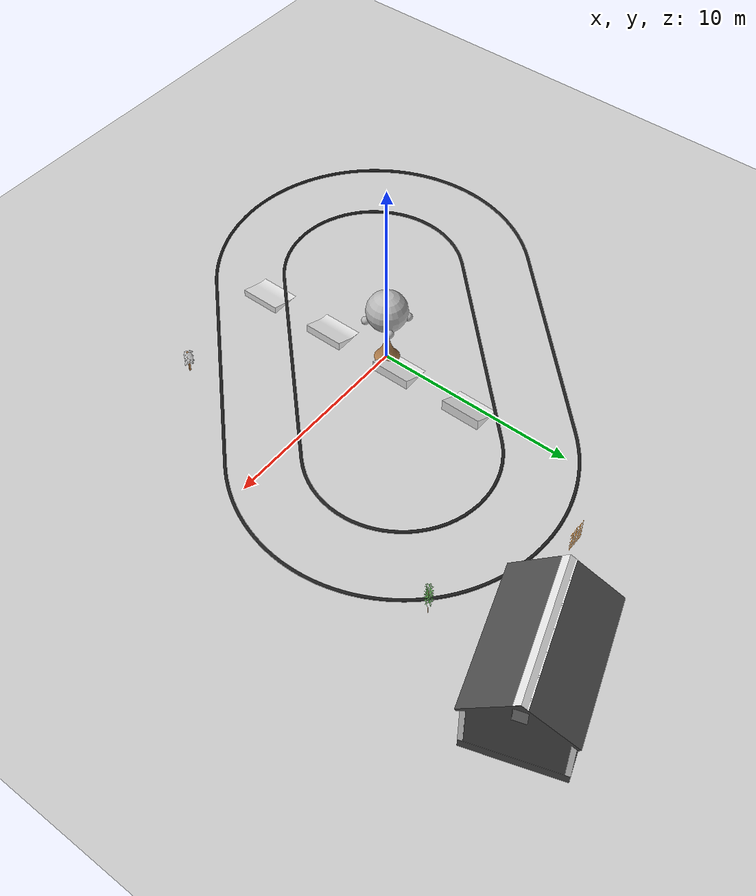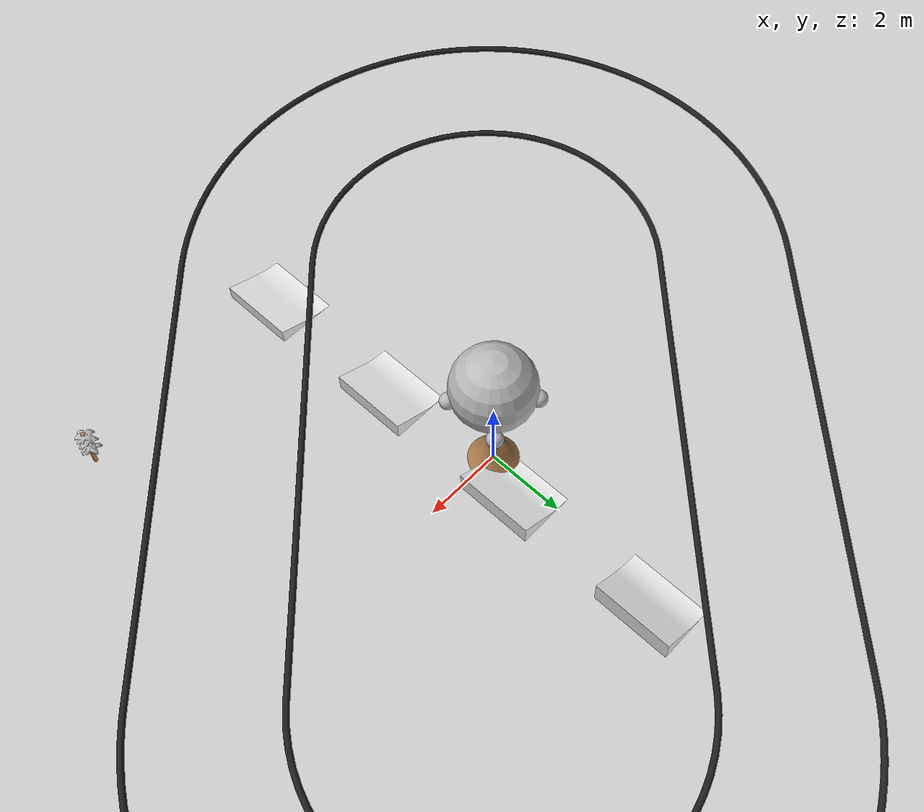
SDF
<sdf version="1.6">
 <world name="default">
  <scene>
   <sky><clouds><speed>12</speed></clouds></sky>
   <ambient>1.0 1.0 1.0 1.0</ambient>
   <shadows>true</shadows>
  </scene>
  <include><uri>model://urdf/models/sun</uri></include>
  <include><name>track</name><uri>model://urdf/models/track</uri><pose>0 0 0.0762 0 0 0.785398</pose></include>
  <include>
   <name>blended_plane</name>
   <uri>model://urdf/models/blended_track</uri>
   <pose>0 0 0 0 0 0.785398</pose>
  </include>
  <include><name>tree</name><uri>model://urdf/models/tree</uri></include>
  <include><name>bamboo</name><uri>model://urdf/models/bamboo</uri><pose>10 10 0 0 0 0</pose></include>
  <include><name>bush</name><uri>model://urdf/models/bush</uri><pose>6.4 -6.67 0.6 0 0 0</pose></include>
  <include><name>fence</name><uri>model://urdf/models/fence</uri><pose>3.1 12.8 0 0 0 0</pose></include>
  <include><name>shed</name><uri>model://urdf/models/shed</uri><pose>14.1 14.4 0 0 0 1.89</pose></include>
  <include>
   <static>true</static>
   <name>18degjump</name>
   <uri>model://urdf/models/jump18deg</uri>
   <pose>0 -8 0 0 0 0</pose>
  </include>
  <include>
   <static>true</static>
   <name>22degjump</name>
   <uri>model://urdf/models/jump22deg</uri>
   <pose>0 -4 0 0 0 0</pose>
  </include>
  <include><static>true</static><name>26degjump</name><uri>model://urdf/models/jump26deg</uri></include>
  <include>
   <static>true</static>
   <name>30degjump</name>
   <uri>model://urdf/models/jump30deg</uri>
   <pose>0 4 0 0 0 0</pose>
  </include>
 </world>
</sdf>

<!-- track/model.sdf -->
<sdf version="1.5">
  <model name="track">
    <static>true</static>
    <link name="link">
      <collision name="collision">
        <geometry>
          <mesh>
            <uri>model://urdf/cad/autoRallyTrack.dae</uri>
            <scale>1.0 1.0 1.0</scale>
          </mesh>
        </geometry>
        <surface>
          <friction>
            <ode>
              <mu>100</mu>
              <mu2>50</mu2>
            </ode>
          </friction>
        </surface>
      </collision>
      <visual name="visual">
        <cast_shadows>false</cast_shadows>
        <geometry>
          <mesh>
            <uri>model://urdf/cad/autoRallyTrack.dae</uri>
            <scale>1.0 1.0 1.0</scale>
          </mesh>
        </geometry>
        <material>
          <script>
            <uri>model://urdf/gazebo.material</uri>
            <name>Gazebo/Black</name>
          </script>
        </material>
      </visual>
    </link>
  </model>
</sdf>

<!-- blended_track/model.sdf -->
<sdf version="1.5">
  <model name="dirt_plane">
    <static>true</static>
    <link name="link">
      <collision name="collision">
        <geometry>
          <plane>
            <normal>0 0 1</normal>
            <size>90 90</size>
          </plane>
        </geometry>
        <laser_retro>0.0</laser_retro>
        <surface>
          <friction>
            <ode>
              <mu>100</mu>
              <mu2>50</mu2>
            </ode>
          </friction>
        </surface>
      </collision>
      <visual name="visual">
        <cast_shadows>false</cast_shadows>
        <geometry>
          <plane>
            <normal>0 0 1</normal>
            <size>90 90</size>
          </plane>
        </geometry>
        <laser_retro>0.0</laser_retro>
        <material>
          <script>
            <uri>model://urdf/gazebo.material</uri>
            <name>Gazebo/Texture_blend</name>
          </script>
        </material>
      </visual>
    </link>
  </model>
</sdf>

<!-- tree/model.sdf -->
<sdf version="1.5">
  <model name="tree">
    <static>true</static>
    <link name="trunk">
      <collision name="collision">
        <geometry>
          <mesh>
            <uri>model://urdf/cad/tree.dae</uri>
            <scale>1 1 1</scale>
          </mesh>
        </geometry>
        <surface>
          <friction>
            <ode>
              <mu>100</mu>
              <mu2>50</mu2>
            </ode>
          </friction>
        </surface>
      </collision>
      <visual name="visual">
        <cast_shadows>false</cast_shadows>
        <geometry>
          <mesh>
            <uri>model://urdf/cad/tree.dae</uri>
            <scale>1 1 1</scale>
          </mesh>
        </geometry>
        <material>
          <script>
            <uri>file://media/materials/scripts/gazebo.material</uri>
            <name>Gazebo/WoodPallet</name>
          </script>
        </material>
      </visual>
    </link>
    <link name="center_ball">
      <pose frame=''>0 0 3 0 -0 0</pose>
      <collision name="collision">
        <geometry>
          <sphere>
            <radius>1.0</radius>
          </sphere>
        </geometry>
        <surface>
          <friction>
            <ode>
              <mu>100</mu>
              <mu2>50</mu2>
            </ode>
          </friction>
        </surface>
      </collision>
      <visual name="visual">
        <cast_shadows>false</cast_shadows>
        <geometry>
          <sphere>
            <radius>1.0</radius>
          </sphere>
        </geometry>
        <material>
          <script>
            <uri>model://urdf/gazebo.material</uri>
            <name>Gazebo/Leaf_image</name>
          </script>
        </material>
      </visual>
    </link>
    <link name="ball_1">
      <pose frame=''>0.7 0.7 2.5 0 -0 0</pose>
      <collision name="collision">
        <geometry>
          <sphere>
            <radius>0.2</radius>
          </sphere>
        </geometry>
        <surface>
          <friction>
            <ode>
              <mu>100</mu>
              <mu2>50</mu2>
            </ode>
          </friction>
        </surface>
      </collision>
      <visual name="visual">
        <cast_shadows>false</cast_shadows>
        <geometry>
          <sphere>
            <radius>0.2</radius>
          </sphere>
        </geometry>
        <material>
          <script>
            <uri>model://urdf/gazebo.material</uri>
            <name>Gazebo/Leaf_image</name>
          </script>
        </material>
      </visual>
    </link>
    <link name="ball_2">
      <pose frame=''>-0.7 -0.7 2.5 0 -0 0</pose>
      <collision name="collision">
        <geometry>
          <sphere>
            <radius>0.2</radius>
          </sphere>
        </geometry>
        <surface>
          <friction>
            <ode>
              <mu>100</mu>
              <mu2>50</mu2>
            </ode>
          </friction>
        </surface>
      </collision>
      <visual name="visual">
        <cast_shadows>false</cast_shadows>
        <geometry>
          <sphere>
            <radius>0.2</radius>
          </sphere>
        </geometry>
        <material>
          <script>
            <uri>model://urdf/gazebo.material</uri>
            <name>Gazebo/Leaf_image</name>
          </script>
        </material>
      </visual>
    </link>
    <link name="ball_3">
      <pose frame=''>-0.7 0.7 2.5 0 -0 0</pose>
      <collision name="collision">
        <geometry>
          <sphere>
            <radius>0.2</radius>
          </sphere>
        </geometry>
        <surface>
          <friction>
            <ode>
              <mu>100</mu>
              <mu2>50</mu2>
            </ode>
          </friction>
        </surface>
      </collision>
      <visual name="visual">
        <cast_shadows>false</cast_shadows>
        <geometry>
          <sphere>
            <radius>0.2</radius>
          </sphere>
        </geometry>
        <material>
          <script>
            <uri>model://urdf/gazebo.material</uri>
            <name>Gazebo/Leaf_image</name>
          </script>
        </material>
      </visual>
    </link>
    <link name="ball_4">
      <pose frame=''>0.7 -0.7 2.5 0 -0 0</pose>
      <collision name="collision">
        <geometry>
          <sphere>
            <radius>0.2</radius>
          </sphere>
        </geometry>
        <surface>
          <friction>
            <ode>
              <mu>100</mu>
              <mu2>50</mu2>
            </ode>
          </friction>
        </surface>
      </collision>
      <visual name="visual">
        <cast_shadows>false</cast_shadows>
        <geometry>
          <sphere>
            <radius>0.2</radius>
          </sphere>
        </geometry>
        <material>
          <script>
            <uri>model://urdf/gazebo.material</uri>
            <name>Gazebo/Leaf_image</name>
          </script>
        </material>
      </visual>
    </link>
  </model>
</sdf>

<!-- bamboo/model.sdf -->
<sdf version="1.5">
  <model name="tree">
    <static>true</static>
    <link name="link">
      <pose frame=''>0 0 0 0 -0 0</pose>
      <collision name="collision">
        <geometry>
          <mesh>
            <uri>model://urdf/cad/bamboo_leaves.dae</uri>
            <scale>1 1 1</scale>
          </mesh>
        </geometry>
        <surface>
          <friction>
            <ode>
              <mu>100</mu>
              <mu2>50</mu2>
            </ode>
          </friction>
        </surface>
      </collision>
      <visual name="visual">
        <cast_shadows>false</cast_shadows>
        <geometry>
          <mesh>
            <uri>model://urdf/cad/bamboo_leaves.dae</uri>
            <scale>1 1 1</scale>
          </mesh>
        </geometry>
        <material>
          <script>
            <uri>model://urdf/gazebo.material</uri>
            <name>Gazebo/Grass_image</name>
          </script>
        </material>
      </visual>
    </link>
    <link name="stem">
      <collision name="collision">
        <geometry>
          <cylinder>
            <radius>0.05</radius>
            <length>1.2</length>
          </cylinder>
        </geometry>
        <surface>
          <friction>
            <ode>
              <mu>100</mu>
              <mu2>50</mu2>
            </ode>
          </friction>
        </surface>
      </collision>
      <visual name="visual">
        <cast_shadows>false</cast_shadows>
        <geometry>
          <cylinder>
            <radius>0.005</radius>
            <length>4.0</length>
          </cylinder>
        </geometry>
        <material>
          <script>
            <uri>file://media/materials/scripts/gazebo.material</uri>
            <name>Gazebo/Wood</name>
          </script>
        </material>
      </visual>
    </link>
  </model>
</sdf>

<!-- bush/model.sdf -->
<sdf version="1.5">
  <model name="bush">
    <static>true</static>
    <link name="link">
      <pose frame=''>-0.439275 0.4 0.1 0 -0 0</pose>
      <collision name="collision">
        <geometry>
          <mesh>
            <uri>model://urdf/cad/bush.dae</uri>
            <scale>1 1 1</scale>
          </mesh>
        </geometry>
        <surface>
          <friction>
            <ode>
              <mu>100</mu>
              <mu2>50</mu2>
            </ode>
          </friction>
        </surface>
      </collision>
      <visual name="visual">
        <cast_shadows>false</cast_shadows>
        <geometry>
          <mesh>
            <uri>model://urdf/cad/bush.dae</uri>
            <scale>1 1 1</scale>
          </mesh>
        </geometry>
        <material>
          <script>
            <uri>model://urdf/gazebo.material</uri>
            <name>Gazebo/Bamboo_image</name>
          </script>
        </material>
      </visual>
    </link>
    <link name="stem">
      <collision name="collision">
        <geometry>
          <cylinder>
            <radius>0.05</radius>
            <length>1.2</length>
          </cylinder>
        </geometry>
        <surface>
          <friction>
            <ode>
              <mu>100</mu>
              <mu2>50</mu2>
            </ode>
          </friction>
        </surface>
      </collision>
      <visual name="visual">
        <cast_shadows>false</cast_shadows>
        <geometry>
          <cylinder>
            <radius>0.05</radius>
            <length>1.2</length>
          </cylinder>
        </geometry>
        <material>
          <script>
            <uri>file://media/materials/scripts/gazebo.material</uri>
            <name>Gazebo/Wood</name>
          </script>
        </material>
      </visual>
    </link>
  </model>
</sdf>

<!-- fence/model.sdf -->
<sdf version="1.5">
  <model name="tree">
    <static>true</static>
    <link name="link">
      <collision name="collision">
        <geometry>
          <mesh>
            <uri>model://urdf/cad/fence.dae</uri>
            <scale>1 1 1</scale>
          </mesh>
        </geometry>
        <surface>
          <friction>
            <ode>
              <mu>100</mu>
              <mu2>50</mu2>
            </ode>
          </friction>
        </surface>
      </collision>
      <visual name="visual">
        <cast_shadows>false</cast_shadows>
        <geometry>
          <mesh>
            <uri>model://urdf/cad/fence.dae</uri>
            <scale>1 1 1</scale>
          </mesh>
        </geometry>
        <material>
          <script>
            <uri>model://urdf/gazebo.material</uri>
            <name>Gazebo/Construction_orange</name>
          </script>
        </material>
      </visual>
    </link>
  </model>
</sdf>

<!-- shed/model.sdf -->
<sdf version="1.5">
  <model name="shed">
    <static>true</static>
    <link name="walls">
      <collision name="collision">
        <geometry>
          <mesh>
            <uri>model://urdf/cad/shed_outer.dae</uri>
            <scale>1 1 1</scale>
          </mesh>
        </geometry>
        <surface>
          <friction>
            <ode>
              <mu>100</mu>
              <mu2>50</mu2>
            </ode>
          </friction>
        </surface>
      </collision>
      <visual name="visual">
        <cast_shadows>false</cast_shadows>
        <geometry>
          <mesh>
            <uri>model://urdf/cad/shed_outer.dae</uri>
            <scale>1 1 1</scale>
          </mesh>
        </geometry>
        <material>
          <script>
            <uri>model://urdf/gazebo.material</uri>
            <name>Gazebo/DarkGrey</name>
          </script>
        </material>
      </visual>
    </link>
    <link name="edges">
      <pose frame=''>0 0 0 0 -0 0</pose>
      <collision name="collision">
        <geometry>
          <mesh>
            <uri>model://urdf/cad/shed_edges.dae</uri>
            <scale>1 1 1</scale>
          </mesh>
        </geometry>
        <surface>
          <friction>
            <ode>
              <mu>100</mu>
              <mu2>50</mu2>
            </ode>
          </friction>
        </surface>
      </collision>
      <visual name="visual">
        <cast_shadows>false</cast_shadows>
        <geometry>
          <mesh>
            <uri>model://urdf/cad/shed_edges.dae</uri>
            <scale>1 1 1</scale>
          </mesh>
        </geometry>
        <material>
          <script>
            <uri>model://urdf/gazebo.material</uri>
            <name>Gazebo/White</name>
          </script>
        </material>
      </visual>
    </link>
  </model>
</sdf>

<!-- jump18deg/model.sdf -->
<sdf version="1.5">
  <model name="jump18deg">
    <static>true</static>
    <link name="link">
      <collision name="collision">
        <geometry>
          <mesh>
            <uri>model://urdf/cad/jump18deg.dae</uri>
            <scale>1 1 1</scale>
          </mesh>
        </geometry>
        <surface>
          <friction>
            <ode>
              <mu>100</mu>
              <mu2>50</mu2>
            </ode>
          </friction>
        </surface>
      </collision>
      <visual name="visual">
        <cast_shadows>false</cast_shadows>
        <geometry>
          <mesh>
            <uri>model://urdf/cad/jump18deg.dae</uri>
            <scale>1 1 1</scale>
          </mesh>
        </geometry>
        <material>
          <script>
            <uri>model://urdf/gazebo.material</uri>
            <name>Gazebo/White</name>
          </script>
        </material>
      </visual>
    </link>
  </model>
</sdf>

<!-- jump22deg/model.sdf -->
<sdf version="1.5">
  <model name="jump22deg">
    <static>true</static>
    <link name="link">
      <collision name="collision">
        <geometry>
          <mesh>
            <uri>model://urdf/jump22deg.dae</uri>
            <scale>1 1 1</scale>
          </mesh>
        </geometry>
        <surface>
          <friction>
            <ode>
              <mu>100</mu>
              <mu2>50</mu2>
            </ode>
          </friction>
        </surface>
      </collision>
      <visual name="visual">
        <cast_shadows>false</cast_shadows>
        <geometry>
          <mesh>
            <uri>model://urdf/cad/jump22deg.dae</uri>
            <scale>1 1 1</scale>
          </mesh>
        </geometry>
        <material>
          <script>
            <uri>model://urdf/cad/gazebo.material</uri>
            <name>Gazebo/White</name>
          </script>
        </material>
      </visual>
    </link>
  </model>
</sdf>

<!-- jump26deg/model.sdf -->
<sdf version="1.5">
  <model name="jump26deg">
    <static>true</static>
    <link name="link">
      <collision name="collision">
        <geometry>
          <mesh>
            <uri>model://urdf/cad/jump26deg.dae</uri>
            <scale>1 1 1</scale>
          </mesh>
        </geometry>
        <surface>
          <friction>
            <ode>
              <mu>100</mu>
              <mu2>50</mu2>
            </ode>
          </friction>
        </surface>
      </collision>
      <visual name="visual">
        <cast_shadows>false</cast_shadows>
        <geometry>
          <mesh>
            <uri>model://urdf/cad/jump26deg.dae</uri>
            <scale>1 1 1</scale>
          </mesh>
        </geometry>
        <material>
          <script>
            <uri>model://urdf/gazebo.material</uri>
            <name>Gazebo/White</name>
          </script>
        </material>
      </visual>
    </link>
  </model>
</sdf>

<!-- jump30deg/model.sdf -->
<sdf version="1.5">
  <model name="jump30deg">
    <static>true</static>
    <link name="link">
      <collision name="collision">
        <geometry>
          <mesh>
            <uri>model://urdf/cad/jump30deg.dae</uri>
            <scale>1 1 1</scale>
          </mesh>
        </geometry>
        <surface>
          <friction>
            <ode>
              <mu>100</mu>
              <mu2>50</mu2>
            </ode>
          </friction>
        </surface>
      </collision>
      <visual name="visual">
        <cast_shadows>false</cast_shadows>
        <geometry>
          <mesh>
            <uri>model://urdf/cad/jump30deg.dae</uri>
            <scale>1 1 1</scale>
          </mesh>
        </geometry>
        <material>
          <script>
            <uri>model://urdf/gazebo.material</uri>
            <name>Gazebo/White</name>
          </script>
        </material>
      </visual>
    </link>
  </model>
</sdf>
